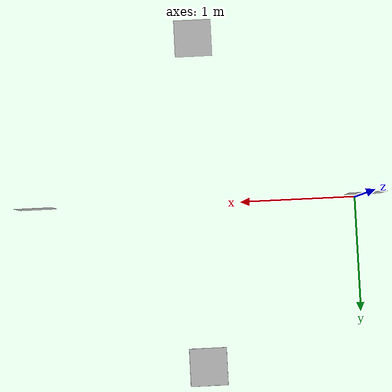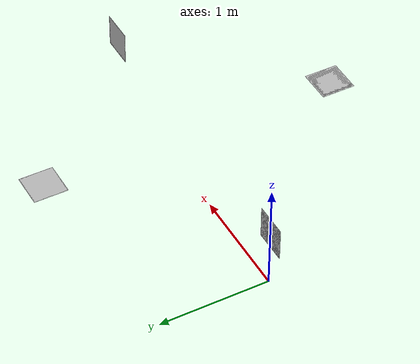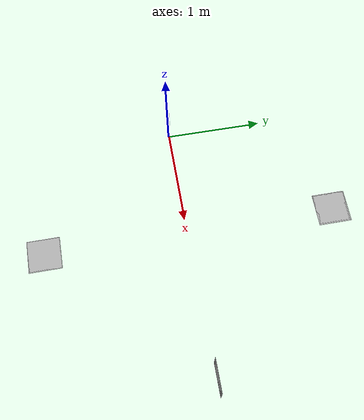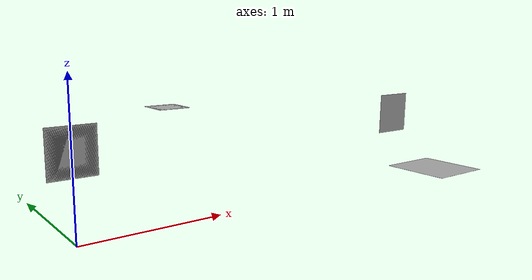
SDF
<?xml version='1.0'?>
<sdf version="1.7">
  <model name="robosub_octagon_animals">
    <static>true</static>  <!-- Static for stability -->

    <!-- Repair hanging (facing +X) -->
    <link name="octagon_repair_link">
      <!-- Front face -->
      <visual name="visual1_front">
        <geometry>
          <plane>
            <normal>1 0 0</normal>
            <size>0.305 0.305</size>
          </plane>
        </geometry>
        <material>
          <script>
            <uri>model://robosub_octagon_animals/materials/scripts</uri>
            <uri>model://robosub_octagon_animals/materials/textures</uri>
            <name>Task5RepairMaterial</name>
          </script>
        </material>
        <cast_shadows>false</cast_shadows>
        <pose>0 0 0.1525 1.5708 0 1.5708</pose>
      </visual>
      <!-- Back face -->
      <visual name="visual1_back">
        <geometry>
          <plane>
            <normal>-1 0 0</normal>
            <size>0.305 0.305</size>
          </plane>
        </geometry>
        <material>
          <script>
            <uri>model://robosub_octagon_animals/materials/scripts</uri>
            <name>Task5BackMaterial</name>
          </script>
        </material>
        <cast_shadows>false</cast_shadows>
        <pose>0 0 0.1525 1.5708 0 1.5708</pose>
      </visual>
      <pose>0 0 0.4 0 0 0</pose>
    </link>

    <!-- Rescue hanging (facing -X) -->
    <link name="octagon_rescue_link">
      <!-- Front face -->
      <visual name="visual2_front">
        <geometry>
          <plane>
            <normal>-1 0 0</normal>
            <size>0.305 0.305</size>
          </plane>
        </geometry>
        <material>
          <script>
            <uri>model://robosub_octagon_animals/materials/scripts</uri>
            <uri>model://robosub_octagon_animals/materials/textures</uri>
            <name>Task5RescueMaterial</name>
          </script>
        </material>
        <cast_shadows>false</cast_shadows>
        <pose>0 0 0.1525 1.5708 0 -1.5708</pose>
      </visual>
      <!-- Back face -->
      <visual name="visual2_back">
        <geometry>
          <plane>
            <normal>1 0 0</normal>
            <size>0.305 0.305</size>
          </plane>
        </geometry>
        <material>
          <script>
            <uri>model://robosub_octagon_animals/materials/scripts</uri>
            <name>Task5BackMaterial</name>
          </script>
        </material>
        <cast_shadows>false</cast_shadows>
        <pose>0 0 0.1525 1.5708 0 -1.5708</pose>
      </visual>
      <pose>2.7 0 0.4 0 0 0</pose>
    </link>

    <!-- Search hanging (facing -Y) -->
    <link name="octagon_search_link">
      <!-- Front face -->
      <visual name="visual3_front">
        <geometry>
          <plane>
            <normal>0 -1 0</normal>
            <size>0.305 0.305</size>
          </plane>
        </geometry>
        <material>
          <script>
            <uri>model://robosub_octagon_animals/materials/scripts</uri>
            <uri>model://robosub_octagon_animals/materials/textures</uri>
            <name>Task5SearchMaterial</name>
          </script>
        </material>
        <cast_shadows>false</cast_shadows>
        <pose>0 0 0.1525 1.5708 0 0</pose>
      </visual>
      <!-- Back face -->
      <visual name="visual3_back">
        <geometry>
          <plane>
            <normal>0 1 0</normal>
            <size>0.305 0.305</size>
          </plane>
        </geometry>
        <material>
          <script>
            <uri>model://robosub_octagon_animals/materials/scripts</uri>
            <name>Task5BackMaterial</name>
          </script>
        </material>
        <cast_shadows>false</cast_shadows>
        <pose>0 0 0.1525 1.5708 0 0</pose>
      </visual>
      <pose>1.35 1.35 0.4 0 0 0</pose>
    </link>

    <!-- Survey hanging (facing +Y) -->
    <link name="octagon_survey_link">
      <!-- Front face -->
      <visual name="visual4_front">
        <geometry>
          <plane>
            <normal>0 1 0</normal>
            <size>0.305 0.305</size>
          </plane>
        </geometry>
        <material>
          <script>
            <uri>model://robosub_octagon_animals/materials/scripts</uri>
            <uri>model://robosub_octagon_animals/materials/textures</uri>
            <name>Task5SurveyMaterial</name>
          </script>
        </material>
        <cast_shadows>false</cast_shadows>
        <pose>0 0 0.1525 1.5708 0 3.14159</pose>
      </visual>
      <!-- Back face -->
      <visual name="visual4_back">
        <geometry>
          <plane>
            <normal>0 -1 0</normal>
            <size>0.305 0.305</size>
          </plane>
        </geometry>
        <material>
          <script>
            <uri>model://robosub_octagon_animals/materials/scripts</uri>
            <name>Task5BackMaterial</name>
          </script>
        </material>
        <cast_shadows>false</cast_shadows>
        <pose>0 0 0.1525 1.5708 0 3.14159</pose>
      </visual>
      <pose>1.35 -1.35 0.4 0 0 0</pose>
    </link>

  </model>
</sdf>
